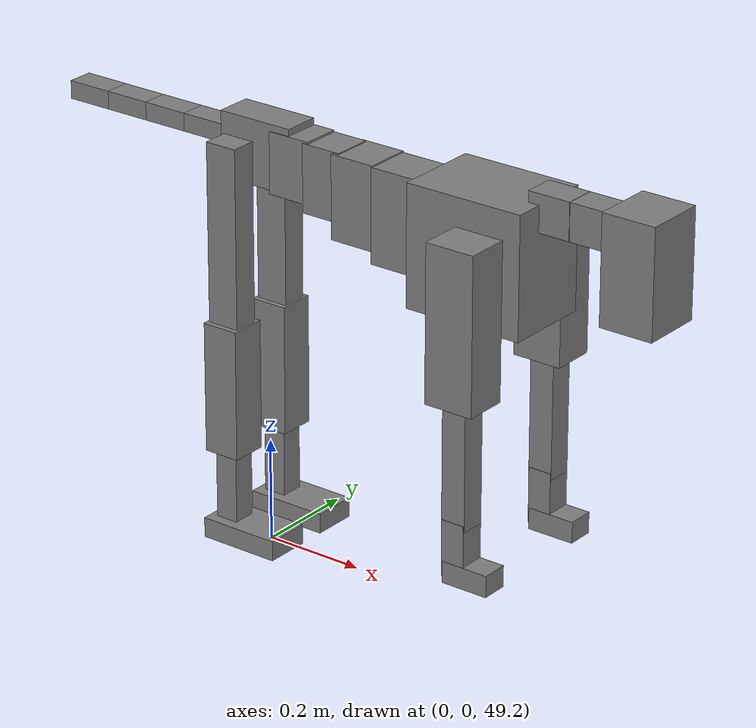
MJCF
<mujoco model="dog">

    <default>
        <joint armature="0.02" stiffness="1" damping="0.2" limited="true"/>
        <geom condim="3" friction="1 0.05 0.05" margin="0.01"/>
        <motor ctrllimited="true" ctrlrange="-1.0 1.0" forcelimited="true" gear="50"/>
    </default>

    <compiler inertiafromgeom="true" angle="radian"/>

    <option timestep="0.016" iterations="50" tolerance="1e-10" solver="Newton" jacobian="dense" cone="pyramidal"/>

    <size nconmax="20000" njmax="60000" nstack="5000000"/>
    <visual>
        <map force="0.1" zfar="30"/>
        <rgba haze="0.15 0.25 0.35 1"/>
        <quality shadowsize="2048"/>
        <global offwidth="800" offheight="800"/>
    </visual>

    <asset>
        <texture type="skybox" builtin="gradient" rgb1="0.3 0.5 0.7" rgb2="0 0 0" width="512" height="512"/>
        <texture name="texplane" type="2d" builtin="checker" rgb1=".2 .3 .4" rgb2=".1 0.15 0.2" width="512" height="512"
                 mark="cross" markrgb=".8 .8 .8"/>
        <texture name="texgeom" type="cube" builtin="flat" mark="cross" width="127" height="1278" rgb1="0.8 0.6 0.4"
                 rgb2="0.8 0.6 0.4" markrgb="1 1 1" random="0.01"/>

        <material name="matplane" reflectance="0.3" texture="texplane" texrepeat="1 1" texuniform="true"/>
        <material name="matgeom" texture="texgeom" texuniform="true" rgba="0.8 0.6 .4 1"/>
    </asset>

    <worldbody>
        <geom name="floor" pos="0 0 0" size="0 0 .25" type="plane" material="matplane" condim="3"/>

        <light directional="false" diffuse=".2 .2 .2" specular="0 0 0" pos="0 0 5" dir="0 0 -1" castshadow="false"/>
        <light mode="targetbodycom" target="torso" directional="false" diffuse=".8 .8 .8" specular="0.3 0.3 0.3"
               pos="0 0 4.0" dir="0 0 -1"/>

        <body name="root" pos="0 0 50">
            <freejoint name="root_1"/>
            <geom type="box" pos="0 0 -0.02" size="0.0774  0.0358  0.063" density="2030"/>

            <body name="spine1" pos="0.054 0 0">
                <joint name="spine1_y" axis="0 1 0" range="0 0.7" limited="true"/>
                <geom type="box" pos="0.02375 0 -0.03" size="0.04375  0.0375  0.05985" density="2030"/>

                <body name="spine2" pos="0.0612 0 0">
                    <joint name="spine2_y" axis="0 1 0" range="-0.15 0.15" limited="true"/>
                    <geom type="box" pos="0.03555  0  -0.04" size="0.04055  0.039  0.06615" density="2030"/>

                    <body name="spine3" pos="0.0730 0 0">
                        <joint name="spine3_y" axis="0 1 0" range="-0.15 0.15" limited="true"/>
                        <geom type="box" pos="0.03555  0  -0.057" size="0.04555  0.0445  0.081" density="2030"/>

                        <body name="spine4" pos="0.0780 0 0">
                            <joint name="spine4_y" axis="0 1 0" range="-0.15 0.15" limited="true"/>
                            <geom type="box" pos="0.05265  0  -0.07" size="0.05265  0.045  0.09135" density="2030"/>

                            <body name="torso" pos="0.1082 0 0">
                                <joint name="torso_y" axis="0 1 0" range="-0.15 0.15" limited="true"/>
                                <geom type="box" pos="0.11925  0  -0.085" size="0.11925  0.085  0.11745"
                                      density="2030"/>

                                <body name="neck1" pos="0.2160  0   0.0180">
                                    <joint name="neck1_y" axis="0 1 0" range="-1.2  -1" limited="true"/>
                                    <geom type="box" pos="0.0423  0  0" size="0.0423  0.03  0.036" density="2325"/>

                                    <body name="neck2" pos="0.0853  0  0">
                                        <joint name="neck2_y" axis="0 1 0" range="0.1  0" limited="true"/>
                                        <geom type="box" pos="0.0423  0  0" size="0.0423  0.03  0.036" density="2325"/>

                                        <body name="head" pos="0.0853  0  0">
                                            <joint name="head_y" axis="0 1 0" range="-0.3  -0.2" limited="true"/>
                                            <geom type="box" pos="0.0531  0  -0.055" size="0.0531  0.06  0.1044"
                                                  density="4030"/>

                                        </body>
                                    </body>
                                </body>

                                <body name="front_shoulder" pos="0.156  0   -0.0480">
                                    <joint name="front_shoulder_y" axis="0 1 0" range="-1 1.5" limited="true"/>
                                    <geom type="box" pos="0 0.13 -0.1239" size="0.0493  0.0421  0.1506" density="1158"/>
                                    <geom type="box" pos="0 -0.13 -0.1239" size="0.0493  0.0421  0.1506"
                                          density="1158"/>

                                    <body name="front_elbow" pos="0  0  -0.2478">
                                        <joint name="front_elbow_y" axis="0 1 0" range="-2 0" limited="true"/>
                                        <geom type="box" pos="0 0.13 -0.1297" size="0.0243  0.0248  0.1297"
                                              density="1081"/>
                                        <geom type="box" pos="0 -0.13 -0.1297" size="0.0243  0.0248  0.1297"
                                              density="1081"/>

                                        <body name="front_wrist" pos="0  0  -0.2595">
                                            <joint name="front_wrist_y" axis="0 1 0" range="-0.2 0" limited="true"/>
                                            <geom type="box" pos="0 0.13 -0.0412" size="0.0232  0.0258  0.0543"
                                                  density="1664"/>
                                            <geom type="box" pos="0 -0.13 -0.0412" size="0.0232  0.0258  0.0543"
                                                  density="1664"/>

                                            <body name="front_finger_end" pos="0  0  -0.0824">
                                                <joint name="front_finger_y" axis="0 1 0" range="-0.4 1"
                                                       limited="true"/>
                                                <geom type="box" pos="0.0259  0.13  -0.0059"
                                                      size="0.0474  0.0259  0.0209" density="1515"/>
                                                <geom type="box" pos="0.0259  -0.13  -0.0059"
                                                      size="0.0474  0.0259  0.0209" density="1515"/>

                                            </body>

                                        </body>
                                    </body>
                                </body>

                            </body>
                        </body>
                    </body>
                </body>
            </body>

            <body name="back_hip" pos="-0.03 0 -0.018">
                <joint name="back_hip_y" axis="0 1 0" range="-1.5 0.3" limited="true"/>
                <geom type="box" pos="0 0.07 -0.1707" size="0.0321  0.0252  0.1935" density="1154"/>
                <geom type="box" pos="0 -0.07 -0.1707" size="0.0321  0.0252  0.1935" density="1154"/>

                <body name="back_knee" pos="0  0  -0.3415">
                    <joint name="back_knee_y" axis="0 1 0" range="0 2.8" limited="true"/>
                    <geom type="box" pos="0 0.07 -0.1116" size="0.0361  0.0356  0.1272" density="1227"/>
                    <geom type="box" pos="0 -0.07 -0.1116" size="0.0361  0.0356  0.1272" density="1227"/>

                    <body name="back_ankle" pos="0  0  -0.2232">
                        <joint name="back_ankle_y" axis="0 1 0" range="-2.2 0" limited="true"/>
                        <geom type="box" pos="0 0.07 -0.0828" size="0.0227  0.0227  0.0941" density="1284"/>
                        <geom type="box" pos="0 -0.07 -0.0828" size="0.0227  0.0227  0.0941" density="1284"/>

                        <body name="back_toe_end" pos="0  0  -0.1656">
                            <joint name="back_toe_y" axis="0 1 0" range="-0.4 1" limited="true"/>
                            <geom type="box" pos="0.0438  0.07  -0.0045" size="0.0802  0.0438  0.0195" density="1515"/>
                            <geom type="box" pos="0.0438  -0.07  -0.0045" size="0.0802  0.0438  0.0195" density="1515"/>

                        </body>
                    </body>
                </body>
            </body>

            <body name="tail1" pos="-0.074 0 -0.006">
                <joint name="tail1_y" axis="0 1 0" range="-0.2 0.2" limited="true"/>
                <geom type="box" pos="-0.0536  0  0" size="0.045  0.025  0.0175" density="1587"/>

                <body name="tail2" pos="-0.09 0 0">
                    <joint name="tail2_y" axis="0 1 0" range="-0.2 0.2" limited="true"/>
                    <geom type="box" pos="-0.0536  0  0" size="0.045  0.025  0.0175" density="1587"/>

                    <body name="tail3" pos="-0.09 0 0">
                        <joint name="tail3_y" axis="0 1 0" range="-0.2 0.2" limited="true"/>
                        <geom type="box" pos="-0.0536  0  0" size="0.045  0.025  0.0175" density="1587"/>

                        <body name="tail4" pos="-0.09 0 0">
                            <joint name="tail4_y" axis="0 1 0" range="-0.2 0.2" limited="true"/>
                            <geom type="box" pos="-0.0536  0  0" size="0.045  0.025  0.0175" density="1587"/>

                        </body>
                    </body>
                </body>
            </body>
        </body>
    </worldbody>

    <actuator>
        <motor joint="spine1_y" forcerange="-150 150     "/>
        <motor joint="spine2_y" forcerange="-150 150     "/>
        <motor joint="spine3_y" forcerange="-150 150     "/>
        <motor joint="spine4_y" forcerange="-150 150     "/>
        <motor joint="torso_y" forcerange="-150 150     "/>
        <motor joint="neck1_y" forcerange="-100 100       "/>
        <motor joint="neck2_y" forcerange="-100 100       "/>
        <motor joint="head_y" forcerange="-150 150       "/>
        <motor joint="front_shoulder_y" forcerange="-185.96 194.86"/>
        <motor joint="front_elbow_y" forcerange="-116.74 163.80"/>
        <motor joint="front_wrist_y" forcerange="-131.37 75.07"/>
        <motor joint="front_finger_y" forcerange="-27.63 70.34"/>
        <motor joint="back_hip_y" forcerange="-215.34 320.81"/>
        <motor joint="back_knee_y" forcerange="-396.28 320.82"/>
        <motor joint="back_angle_y" forcerange="-100.97 162.46"/>
        <motor joint="back_toe_y" forcerange="-131.21 138.96"/>
        <motor joint="tail1_y" forcerange="-50 50     "/>
        <motor joint="tail2_y" forcerange="-50 50     "/>
        <motor joint="tail3_y" forcerange="-50 50     "/>
        <motor joint="tail4_y" forcerange="-50 50     "/>
    </actuator>
</mujoco>
